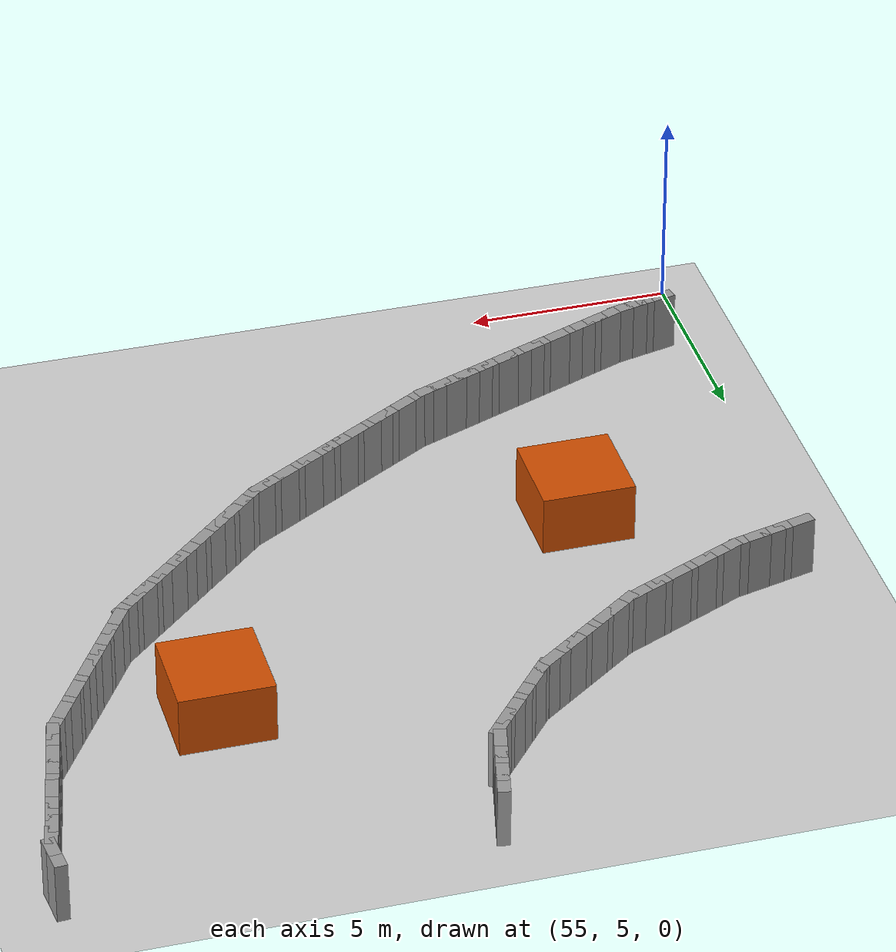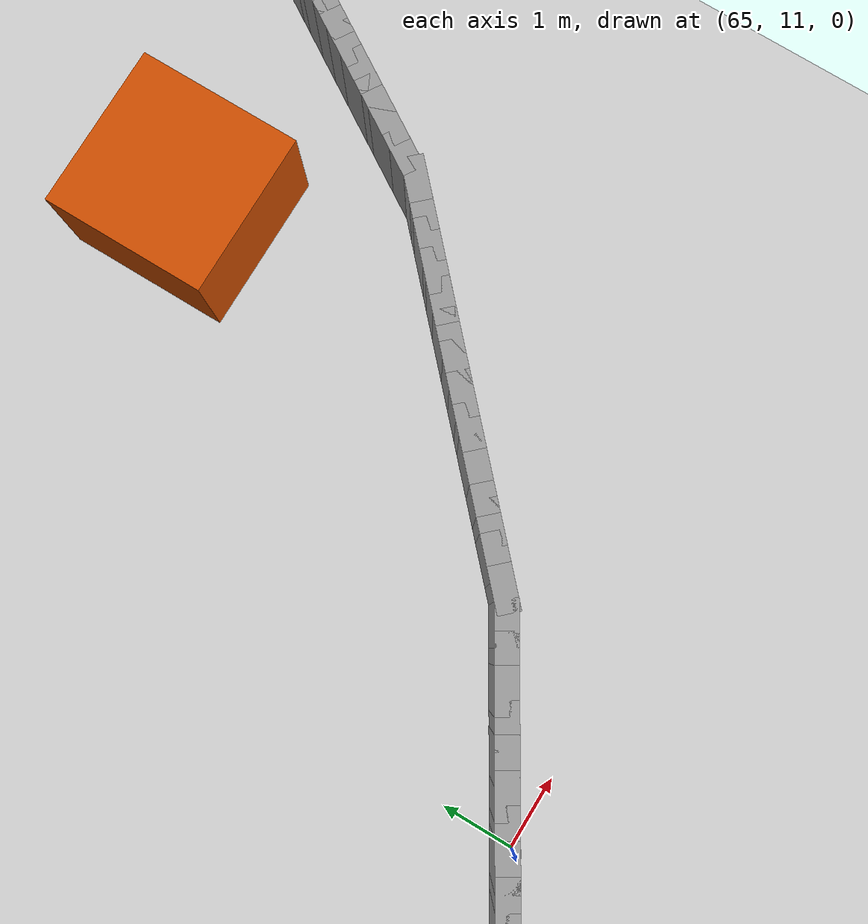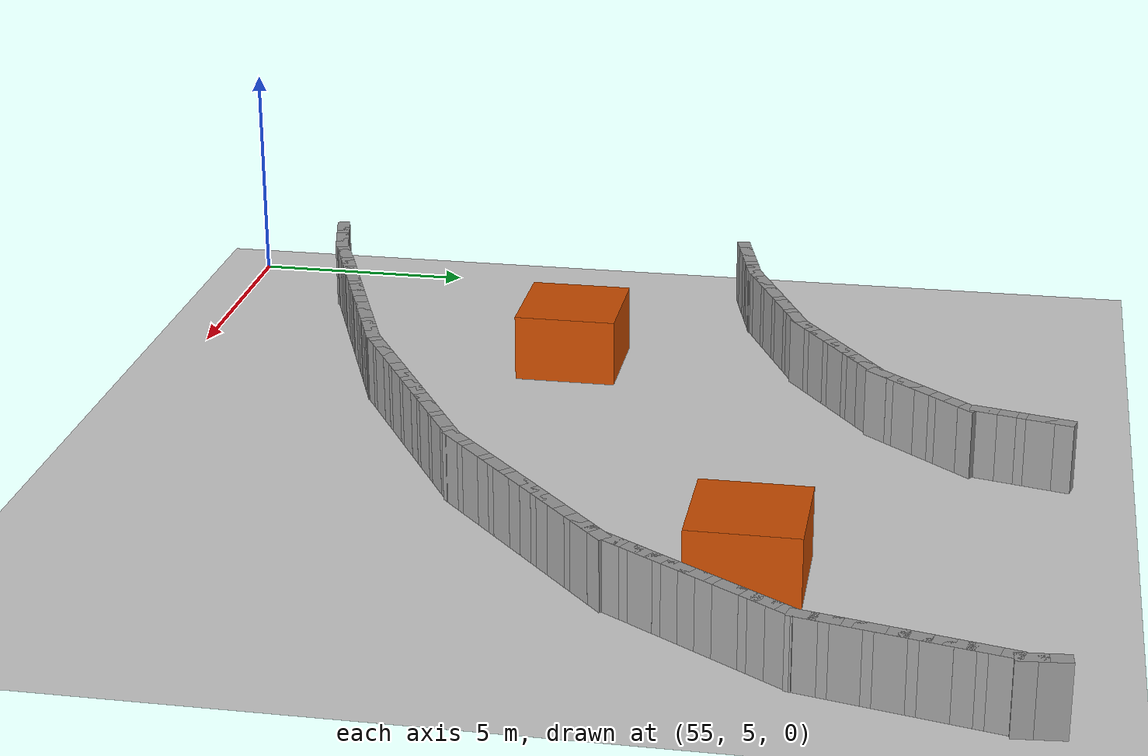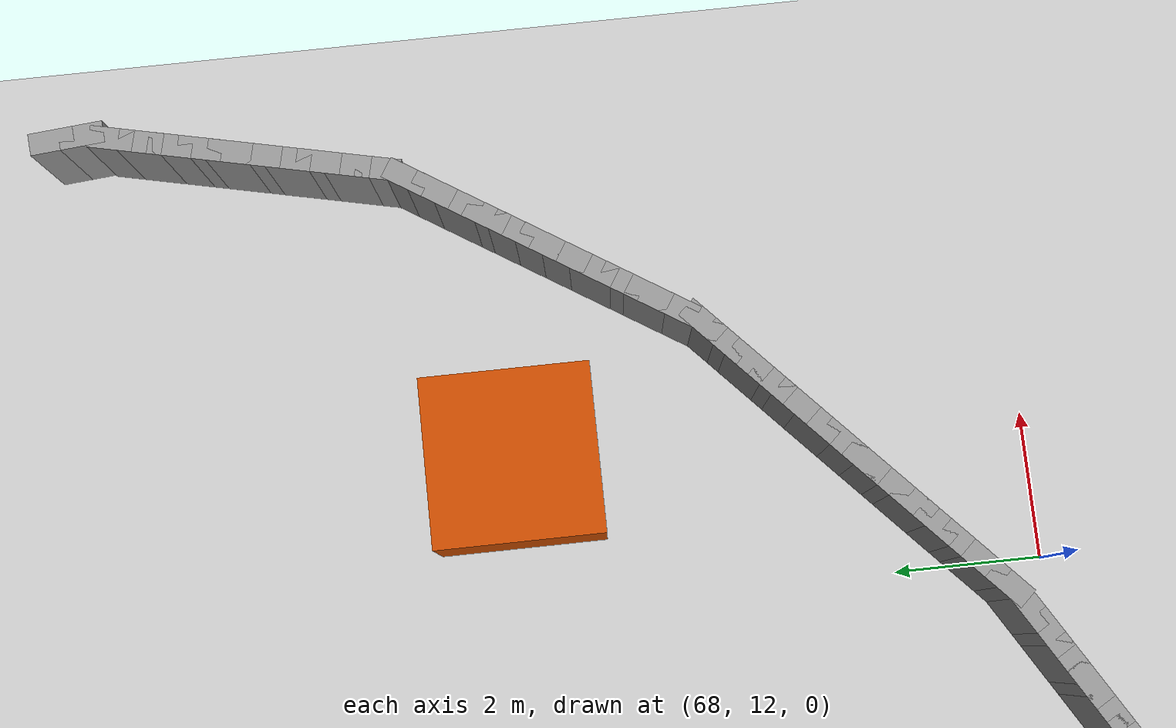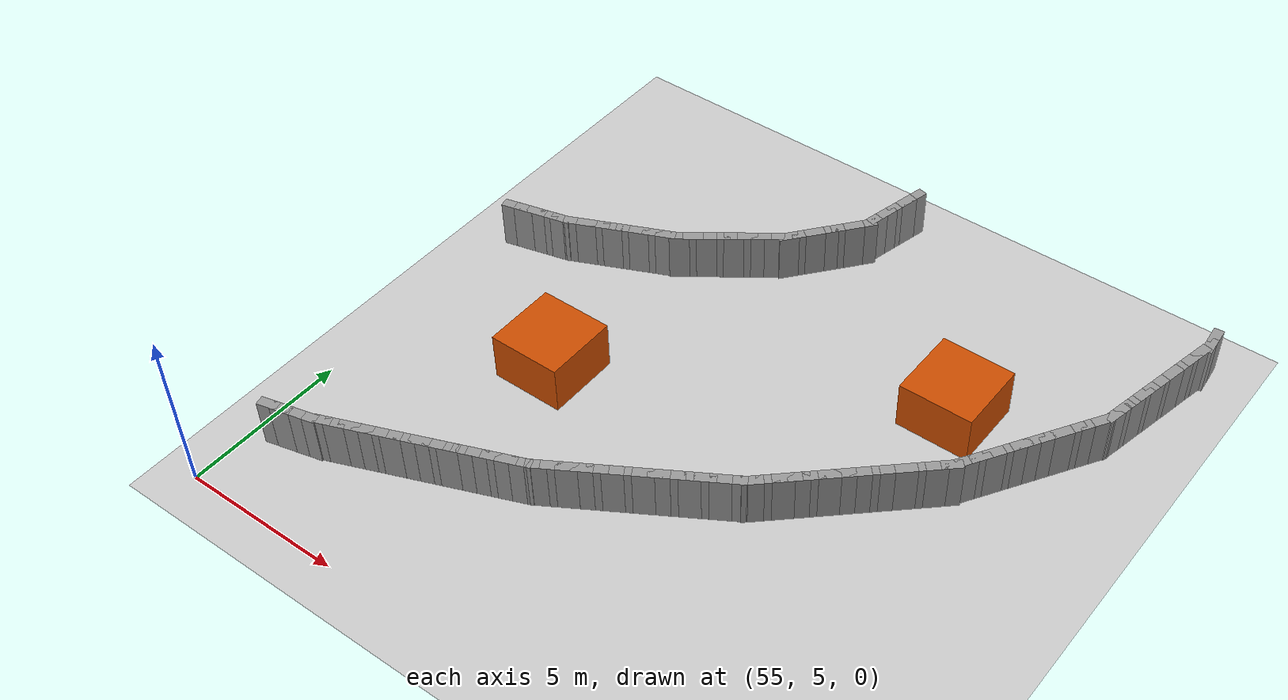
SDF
<sdf version="1.5">
 <world name="img_ellipse_obs">
  <include><uri>model://sun</uri></include>
  <include><uri>model://ground_plane</uri></include>
  <model name="wallL_156">
   <static>true</static>
   <pose>55.783 7.235 0.750 0 0 0.237</pose>
   <link name="link">
    <collision name="col"><geometry><box><size>0.600 0.300 1.500</size></box></geometry></collision>
    <visual name="vis">
     <geometry><box><size>0.600 0.300 1.500</size></box></geometry>
     <material><ambient>0.6 0.6 0.6 1</ambient><diffuse>0.6 0.6 0.6 1</diffuse></material>
    </visual>
   </link>
  </model>
  <model name="wallL_157">
   <static>true</static>
   <pose>56.172 7.328 0.750 0 0 0.237</pose>
   <link name="link">
    <collision name="col"><geometry><box><size>0.600 0.300 1.500</size></box></geometry></collision>
    <visual name="vis">
     <geometry><box><size>0.600 0.300 1.500</size></box></geometry>
     <material><ambient>0.6 0.6 0.6 1</ambient><diffuse>0.6 0.6 0.6 1</diffuse></material>
    </visual>
   </link>
  </model>
  <model name="wallL_158">
   <static>true</static>
   <pose>56.560 7.422 0.750 0 0 0.237</pose>
   <link name="link">
    <collision name="col"><geometry><box><size>0.600 0.300 1.500</size></box></geometry></collision>
    <visual name="vis">
     <geometry><box><size>0.600 0.300 1.500</size></box></geometry>
     <material><ambient>0.6 0.6 0.6 1</ambient><diffuse>0.6 0.6 0.6 1</diffuse></material>
    </visual>
   </link>
  </model>
  <model name="wallL_159">
   <static>true</static>
   <pose>56.949 7.516 0.750 0 0 0.237</pose>
   <link name="link">
    <collision name="col"><geometry><box><size>0.600 0.300 1.500</size></box></geometry></collision>
    <visual name="vis">
     <geometry><box><size>0.600 0.300 1.500</size></box></geometry>
     <material><ambient>0.6 0.6 0.6 1</ambient><diffuse>0.6 0.6 0.6 1</diffuse></material>
    </visual>
   </link>
  </model>
  <model name="wallL_160">
   <static>true</static>
   <pose>57.323 7.658 0.750 0 0 0.376</pose>
   <link name="link">
    <collision name="col"><geometry><box><size>0.600 0.300 1.500</size></box></geometry></collision>
    <visual name="vis">
     <geometry><box><size>0.600 0.300 1.500</size></box></geometry>
     <material><ambient>0.6 0.6 0.6 1</ambient><diffuse>0.6 0.6 0.6 1</diffuse></material>
    </visual>
   </link>
  </model>
  <model name="wallL_161">
   <static>true</static>
   <pose>57.695 7.804 0.750 0 0 0.376</pose>
   <link name="link">
    <collision name="col"><geometry><box><size>0.600 0.300 1.500</size></box></geometry></collision>
    <visual name="vis">
     <geometry><box><size>0.600 0.300 1.500</size></box></geometry>
     <material><ambient>0.6 0.6 0.6 1</ambient><diffuse>0.6 0.6 0.6 1</diffuse></material>
    </visual>
   </link>
  </model>
  <model name="wallL_162">
   <static>true</static>
   <pose>58.067 7.951 0.750 0 0 0.376</pose>
   <link name="link">
    <collision name="col"><geometry><box><size>0.600 0.300 1.500</size></box></geometry></collision>
    <visual name="vis">
     <geometry><box><size>0.600 0.300 1.500</size></box></geometry>
     <material><ambient>0.6 0.6 0.6 1</ambient><diffuse>0.6 0.6 0.6 1</diffuse></material>
    </visual>
   </link>
  </model>
  <model name="wallL_163">
   <static>true</static>
   <pose>58.439 8.098 0.750 0 0 0.376</pose>
   <link name="link">
    <collision name="col"><geometry><box><size>0.600 0.300 1.500</size></box></geometry></collision>
    <visual name="vis">
     <geometry><box><size>0.600 0.300 1.500</size></box></geometry>
     <material><ambient>0.6 0.6 0.6 1</ambient><diffuse>0.6 0.6 0.6 1</diffuse></material>
    </visual>
   </link>
  </model>
  <model name="wallL_164">
   <static>true</static>
   <pose>58.811 8.245 0.750 0 0 0.376</pose>
   <link name="link">
    <collision name="col"><geometry><box><size>0.600 0.300 1.500</size></box></geometry></collision>
    <visual name="vis">
     <geometry><box><size>0.600 0.300 1.500</size></box></geometry>
     <material><ambient>0.6 0.6 0.6 1</ambient><diffuse>0.6 0.6 0.6 1</diffuse></material>
    </visual>
   </link>
  </model>
  <model name="wallL_165">
   <static>true</static>
   <pose>59.184 8.391 0.750 0 0 0.376</pose>
   <link name="link">
    <collision name="col"><geometry><box><size>0.600 0.300 1.500</size></box></geometry></collision>
    <visual name="vis">
     <geometry><box><size>0.600 0.300 1.500</size></box></geometry>
     <material><ambient>0.6 0.6 0.6 1</ambient><diffuse>0.6 0.6 0.6 1</diffuse></material>
    </visual>
   </link>
  </model>
  <model name="wallL_166">
   <static>true</static>
   <pose>59.556 8.538 0.750 0 0 0.376</pose>
   <link name="link">
    <collision name="col"><geometry><box><size>0.600 0.300 1.500</size></box></geometry></collision>
    <visual name="vis">
     <geometry><box><size>0.600 0.300 1.500</size></box></geometry>
     <material><ambient>0.6 0.6 0.6 1</ambient><diffuse>0.6 0.6 0.6 1</diffuse></material>
    </visual>
   </link>
  </model>
  <model name="wallL_167">
   <static>true</static>
   <pose>59.928 8.685 0.750 0 0 0.376</pose>
   <link name="link">
    <collision name="col"><geometry><box><size>0.600 0.300 1.500</size></box></geometry></collision>
    <visual name="vis">
     <geometry><box><size>0.600 0.300 1.500</size></box></geometry>
     <material><ambient>0.6 0.6 0.6 1</ambient><diffuse>0.6 0.6 0.6 1</diffuse></material>
    </visual>
   </link>
  </model>
  <model name="wallL_168">
   <static>true</static>
   <pose>60.300 8.832 0.750 0 0 0.376</pose>
   <link name="link">
    <collision name="col"><geometry><box><size>0.600 0.300 1.500</size></box></geometry></collision>
    <visual name="vis">
     <geometry><box><size>0.600 0.300 1.500</size></box></geometry>
     <material><ambient>0.6 0.6 0.6 1</ambient><diffuse>0.6 0.6 0.6 1</diffuse></material>
    </visual>
   </link>
  </model>
  <model name="wallL_169">
   <static>true</static>
   <pose>60.672 8.978 0.750 0 0 0.376</pose>
   <link name="link">
    <collision name="col"><geometry><box><size>0.600 0.300 1.500</size></box></geometry></collision>
    <visual name="vis">
     <geometry><box><size>0.600 0.300 1.500</size></box></geometry>
     <material><ambient>0.6 0.6 0.6 1</ambient><diffuse>0.6 0.6 0.6 1</diffuse></material>
    </visual>
   </link>
  </model>
  <model name="wallL_170">
   <static>true</static>
   <pose>61.044 9.125 0.750 0 0 0.376</pose>
   <link name="link">
    <collision name="col"><geometry><box><size>0.600 0.300 1.500</size></box></geometry></collision>
    <visual name="vis">
     <geometry><box><size>0.600 0.300 1.500</size></box></geometry>
     <material><ambient>0.6 0.6 0.6 1</ambient><diffuse>0.6 0.6 0.6 1</diffuse></material>
    </visual>
   </link>
  </model>
  <model name="wallL_171">
   <static>true</static>
   <pose>61.416 9.272 0.750 0 0 0.376</pose>
   <link name="link">
    <collision name="col"><geometry><box><size>0.600 0.300 1.500</size></box></geometry></collision>
    <visual name="vis">
     <geometry><box><size>0.600 0.300 1.500</size></box></geometry>
     <material><ambient>0.6 0.6 0.6 1</ambient><diffuse>0.6 0.6 0.6 1</diffuse></material>
    </visual>
   </link>
  </model>
  <model name="wallL_172">
   <static>true</static>
   <pose>61.788 9.419 0.750 0 0 0.376</pose>
   <link name="link">
    <collision name="col"><geometry><box><size>0.600 0.300 1.500</size></box></geometry></collision>
    <visual name="vis">
     <geometry><box><size>0.600 0.300 1.500</size></box></geometry>
     <material><ambient>0.6 0.6 0.6 1</ambient><diffuse>0.6 0.6 0.6 1</diffuse></material>
    </visual>
   </link>
  </model>
  <model name="wallL_173">
   <static>true</static>
   <pose>62.160 9.565 0.750 0 0 0.376</pose>
   <link name="link">
    <collision name="col"><geometry><box><size>0.600 0.300 1.500</size></box></geometry></collision>
    <visual name="vis">
     <geometry><box><size>0.600 0.300 1.500</size></box></geometry>
     <material><ambient>0.6 0.6 0.6 1</ambient><diffuse>0.6 0.6 0.6 1</diffuse></material>
    </visual>
   </link>
  </model>
  <model name="wallL_174">
   <static>true</static>
   <pose>62.533 9.712 0.750 0 0 0.376</pose>
   <link name="link">
    <collision name="col"><geometry><box><size>0.600 0.300 1.500</size></box></geometry></collision>
    <visual name="vis">
     <geometry><box><size>0.600 0.300 1.500</size></box></geometry>
     <material><ambient>0.6 0.6 0.6 1</ambient><diffuse>0.6 0.6 0.6 1</diffuse></material>
    </visual>
   </link>
  </model>
  <model name="wallL_175">
   <static>true</static>
   <pose>62.889 9.891 0.750 0 0 0.540</pose>
   <link name="link">
    <collision name="col"><geometry><box><size>0.600 0.300 1.500</size></box></geometry></collision>
    <visual name="vis">
     <geometry><box><size>0.600 0.300 1.500</size></box></geometry>
     <material><ambient>0.6 0.6 0.6 1</ambient><diffuse>0.6 0.6 0.6 1</diffuse></material>
    </visual>
   </link>
  </model>
  <model name="wallL_176">
   <static>true</static>
   <pose>63.232 10.097 0.750 0 0 0.540</pose>
   <link name="link">
    <collision name="col"><geometry><box><size>0.600 0.300 1.500</size></box></geometry></collision>
    <visual name="vis">
     <geometry><box><size>0.600 0.300 1.500</size></box></geometry>
     <material><ambient>0.6 0.6 0.6 1</ambient><diffuse>0.6 0.6 0.6 1</diffuse></material>
    </visual>
   </link>
  </model>
  <model name="wallL_177">
   <static>true</static>
   <pose>63.575 10.302 0.750 0 0 0.540</pose>
   <link name="link">
    <collision name="col"><geometry><box><size>0.600 0.300 1.500</size></box></geometry></collision>
    <visual name="vis">
     <geometry><box><size>0.600 0.300 1.500</size></box></geometry>
     <material><ambient>0.6 0.6 0.6 1</ambient><diffuse>0.6 0.6 0.6 1</diffuse></material>
    </visual>
   </link>
  </model>
  <model name="wallL_178">
   <static>true</static>
   <pose>63.918 10.508 0.750 0 0 0.540</pose>
   <link name="link">
    <collision name="col"><geometry><box><size>0.600 0.300 1.500</size></box></geometry></collision>
    <visual name="vis">
     <geometry><box><size>0.600 0.300 1.500</size></box></geometry>
     <material><ambient>0.6 0.6 0.6 1</ambient><diffuse>0.6 0.6 0.6 1</diffuse></material>
    </visual>
   </link>
  </model>
  <model name="wallL_179">
   <static>true</static>
   <pose>64.261 10.714 0.750 0 0 0.540</pose>
   <link name="link">
    <collision name="col"><geometry><box><size>0.600 0.300 1.500</size></box></geometry></collision>
    <visual name="vis">
     <geometry><box><size>0.600 0.300 1.500</size></box></geometry>
     <material><ambient>0.6 0.6 0.6 1</ambient><diffuse>0.6 0.6 0.6 1</diffuse></material>
    </visual>
   </link>
  </model>
  <model name="wallL_180">
   <static>true</static>
   <pose>64.604 10.919 0.750 0 0 0.540</pose>
   <link name="link">
    <collision name="col"><geometry><box><size>0.600 0.300 1.500</size></box></geometry></collision>
    <visual name="vis">
     <geometry><box><size>0.600 0.300 1.500</size></box></geometry>
     <material><ambient>0.6 0.6 0.6 1</ambient><diffuse>0.6 0.6 0.6 1</diffuse></material>
    </visual>
   </link>
  </model>
  <model name="wallL_181">
   <static>true</static>
   <pose>64.947 11.125 0.750 0 0 0.540</pose>
   <link name="link">
    <collision name="col"><geometry><box><size>0.600 0.300 1.500</size></box></geometry></collision>
    <visual name="vis">
     <geometry><box><size>0.600 0.300 1.500</size></box></geometry>
     <material><ambient>0.6 0.6 0.6 1</ambient><diffuse>0.6 0.6 0.6 1</diffuse></material>
    </visual>
   </link>
  </model>
  <model name="wallL_182">
   <static>true</static>
   <pose>65.291 11.330 0.750 0 0 0.540</pose>
   <link name="link">
    <collision name="col"><geometry><box><size>0.600 0.300 1.500</size></box></geometry></collision>
    <visual name="vis">
     <geometry><box><size>0.600 0.300 1.500</size></box></geometry>
     <material><ambient>0.6 0.6 0.6 1</ambient><diffuse>0.6 0.6 0.6 1</diffuse></material>
    </visual>
   </link>
  </model>
  <model name="wallL_183">
   <static>true</static>
   <pose>65.634 11.536 0.750 0 0 0.540</pose>
   <link name="link">
    <collision name="col"><geometry><box><size>0.600 0.300 1.500</size></box></geometry></collision>
    <visual name="vis">
     <geometry><box><size>0.600 0.300 1.500</size></box></geometry>
     <material><ambient>0.6 0.6 0.6 1</ambient><diffuse>0.6 0.6 0.6 1</diffuse></material>
    </visual>
   </link>
  </model>
  <model name="wallL_184">
   <static>true</static>
   <pose>65.977 11.742 0.750 0 0 0.540</pose>
   <link name="link">
    <collision name="col"><geometry><box><size>0.600 0.300 1.500</size></box></geometry></collision>
    <visual name="vis">
     <geometry><box><size>0.600 0.300 1.500</size></box></geometry>
     <material><ambient>0.6 0.6 0.6 1</ambient><diffuse>0.6 0.6 0.6 1</diffuse></material>
    </visual>
   </link>
  </model>
  <model name="wallL_185">
   <static>true</static>
   <pose>66.320 11.947 0.750 0 0 0.540</pose>
   <link name="link">
    <collision name="col"><geometry><box><size>0.600 0.300 1.500</size></box></geometry></collision>
    <visual name="vis">
     <geometry><box><size>0.600 0.300 1.500</size></box></geometry>
     <material><ambient>0.6 0.6 0.6 1</ambient><diffuse>0.6 0.6 0.6 1</diffuse></material>
    </visual>
   </link>
  </model>
  <model name="wallL_186">
   <static>true</static>
   <pose>66.663 12.153 0.750 0 0 0.540</pose>
   <link name="link">
    <collision name="col"><geometry><box><size>0.600 0.300 1.500</size></box></geometry></collision>
    <visual name="vis">
     <geometry><box><size>0.600 0.300 1.500</size></box></geometry>
     <material><ambient>0.6 0.6 0.6 1</ambient><diffuse>0.6 0.6 0.6 1</diffuse></material>
    </visual>
   </link>
  </model>
  <model name="wallL_187">
   <static>true</static>
   <pose>67.006 12.358 0.750 0 0 0.540</pose>
   <link name="link">
    <collision name="col"><geometry><box><size>0.600 0.300 1.500</size></box></geometry></collision>
    <visual name="vis">
     <geometry><box><size>0.600 0.300 1.500</size></box></geometry>
     <material><ambient>0.6 0.6 0.6 1</ambient><diffuse>0.6 0.6 0.6 1</diffuse></material>
    </visual>
   </link>
  </model>
  <model name="wallL_188">
   <static>true</static>
   <pose>67.349 12.564 0.750 0 0 0.540</pose>
   <link name="link">
    <collision name="col"><geometry><box><size>0.600 0.300 1.500</size></box></geometry></collision>
    <visual name="vis">
     <geometry><box><size>0.600 0.300 1.500</size></box></geometry>
     <material><ambient>0.6 0.6 0.6 1</ambient><diffuse>0.6 0.6 0.6 1</diffuse></material>
    </visual>
   </link>
  </model>
  <model name="wallL_189">
   <static>true</static>
   <pose>67.675 12.793 0.750 0 0 0.748</pose>
   <link name="link">
    <collision name="col"><geometry><box><size>0.600 0.300 1.500</size></box></geometry></collision>
    <visual name="vis">
     <geometry><box><size>0.600 0.300 1.500</size></box></geometry>
     <material><ambient>0.6 0.6 0.6 1</ambient><diffuse>0.6 0.6 0.6 1</diffuse></material>
    </visual>
   </link>
  </model>
  <model name="wallL_190">
   <static>true</static>
   <pose>67.968 13.065 0.750 0 0 0.748</pose>
   <link name="link">
    <collision name="col"><geometry><box><size>0.600 0.300 1.500</size></box></geometry></collision>
    <visual name="vis">
     <geometry><box><size>0.600 0.300 1.500</size></box></geometry>
     <material><ambient>0.6 0.6 0.6 1</ambient><diffuse>0.6 0.6 0.6 1</diffuse></material>
    </visual>
   </link>
  </model>
  <model name="wallL_191">
   <static>true</static>
   <pose>68.262 13.337 0.750 0 0 0.748</pose>
   <link name="link">
    <collision name="col"><geometry><box><size>0.600 0.300 1.500</size></box></geometry></collision>
    <visual name="vis">
     <geometry><box><size>0.600 0.300 1.500</size></box></geometry>
     <material><ambient>0.6 0.6 0.6 1</ambient><diffuse>0.6 0.6 0.6 1</diffuse></material>
    </visual>
   </link>
  </model>
  <model name="wallL_192">
   <static>true</static>
   <pose>68.555 13.609 0.750 0 0 0.748</pose>
   <link name="link">
    <collision name="col"><geometry><box><size>0.600 0.300 1.500</size></box></geometry></collision>
    <visual name="vis">
     <geometry><box><size>0.600 0.300 1.500</size></box></geometry>
     <material><ambient>0.6 0.6 0.6 1</ambient><diffuse>0.6 0.6 0.6 1</diffuse></material>
    </visual>
   </link>
  </model>
  <model name="wallL_193">
   <static>true</static>
   <pose>68.848 13.881 0.750 0 0 0.748</pose>
   <link name="link">
    <collision name="col"><geometry><box><size>0.600 0.300 1.500</size></box></geometry></collision>
    <visual name="vis">
     <geometry><box><size>0.600 0.300 1.500</size></box></geometry>
     <material><ambient>0.6 0.6 0.6 1</ambient><diffuse>0.6 0.6 0.6 1</diffuse></material>
    </visual>
   </link>
  </model>
  <model name="wallL_194">
   <static>true</static>
   <pose>69.142 14.153 0.750 0 0 0.748</pose>
   <link name="link">
    <collision name="col"><geometry><box><size>0.600 0.300 1.500</size></box></geometry></collision>
    <visual name="vis">
     <geometry><box><size>0.600 0.300 1.500</size></box></geometry>
     <material><ambient>0.6 0.6 0.6 1</ambient><diffuse>0.6 0.6 0.6 1</diffuse></material>
    </visual>
   </link>
  </model>
  <model name="wallL_195">
   <static>true</static>
   <pose>69.435 14.425 0.750 0 0 0.748</pose>
   <link name="link">
    <collision name="col"><geometry><box><size>0.600 0.300 1.500</size></box></geometry></collision>
    <visual name="vis">
     <geometry><box><size>0.600 0.300 1.500</size></box></geometry>
     <material><ambient>0.6 0.6 0.6 1</ambient><diffuse>0.6 0.6 0.6 1</diffuse></material>
    </visual>
   </link>
  </model>
  <model name="wallL_196">
   <static>true</static>
   <pose>69.728 14.697 0.750 0 0 0.748</pose>
   <link name="link">
    <collision name="col"><geometry><box><size>0.600 0.300 1.500</size></box></geometry></collision>
    <visual name="vis">
     <geometry><box><size>0.600 0.300 1.500</size></box></geometry>
     <material><ambient>0.6 0.6 0.6 1</ambient><diffuse>0.6 0.6 0.6 1</diffuse></material>
    </visual>
   </link>
  </model>
  <model name="wallL_197">
   <static>true</static>
   <pose>70.021 14.969 0.750 0 0 0.748</pose>
   <link name="link">
    <collision name="col"><geometry><box><size>0.600 0.300 1.500</size></box></geometry></collision>
    <visual name="vis">
     <geometry><box><size>0.600 0.300 1.500</size></box></geometry>
     <material><ambient>0.6 0.6 0.6 1</ambient><diffuse>0.6 0.6 0.6 1</diffuse></material>
    </visual>
   </link>
  </model>
  <model name="wallL_198">
   <static>true</static>
   <pose>70.315 15.241 0.750 0 0 0.748</pose>
   <link name="link">
    <collision name="col"><geometry><box><size>0.600 0.300 1.500</size></box></geometry></collision>
    <visual name="vis">
     <geometry><box><size>0.600 0.300 1.500</size></box></geometry>
     <material><ambient>0.6 0.6 0.6 1</ambient><diffuse>0.6 0.6 0.6 1</diffuse></material>
    </visual>
   </link>
  </model>
  <model name="wallL_199">
   <static>true</static>
   <pose>70.608 15.512 0.750 0 0 0.748</pose>
   <link name="link">
    <collision name="col"><geometry><box><size>0.600 0.300 1.500</size></box></geometry></collision>
    <visual name="vis">
     <geometry><box><size>0.600 0.300 1.500</size></box></geometry>
     <material><ambient>0.6 0.6 0.6 1</ambient><diffuse>0.6 0.6 0.6 1</diffuse></material>
    </visual>
   </link>
  </model>
  <model name="wallL_200">
   <static>true</static>
   <pose>70.901 15.784 0.750 0 0 0.748</pose>
   <link name="link">
    <collision name="col"><geometry><box><size>0.600 0.300 1.500</size></box></geometry></collision>
    <visual name="vis">
     <geometry><box><size>0.600 0.300 1.500</size></box></geometry>
     <material><ambient>0.6 0.6 0.6 1</ambient><diffuse>0.6 0.6 0.6 1</diffuse></material>
    </visual>
   </link>
  </model>
  <model name="wallL_201">
   <static>true</static>
   <pose>71.195 16.056 0.750 0 0 0.748</pose>
   <link name="link">
    <collision name="col"><geometry><box><size>0.600 0.300 1.500</size></box></geometry></collision>
    <visual name="vis">
     <geometry><box><size>0.600 0.300 1.500</size></box></geometry>
     <material><ambient>0.6 0.6 0.6 1</ambient><diffuse>0.6 0.6 0.6 1</diffuse></material>
    </visual>
   </link>
  </model>
  <model name="wallL_202">
   <static>true</static>
   <pose>71.488 16.328 0.750 0 0 0.748</pose>
   <link name="link">
    <collision name="col"><geometry><box><size>0.600 0.300 1.500</size></box></geometry></collision>
    <visual name="vis">
     <geometry><box><size>0.600 0.300 1.500</size></box></geometry>
     <material><ambient>0.6 0.6 0.6 1</ambient><diffuse>0.6 0.6 0.6 1</diffuse></material>
    </visual>
   </link>
  </model>
  <model name="wallL_203">
   <static>true</static>
   <pose>71.715 16.655 0.750 0 0 1.009</pose>
   <link name="link">
    <collision name="col"><geometry><box><size>0.600 0.300 1.500</size></box></geometry></collision>
    <visual name="vis">
     <geometry><box><size>0.600 0.300 1.500</size></box></geometry>
     <material><ambient>0.6 0.6 0.6 1</ambient><diffuse>0.6 0.6 0.6 1</diffuse></material>
    </visual>
   </link>
  </model>
  <model name="wallL_204">
   <static>true</static>
   <pose>71.928 16.994 0.750 0 0 1.009</pose>
   <link name="link">
    <collision name="col"><geometry><box><size>0.600 0.300 1.500</size></box></geometry></collision>
    <visual name="vis">
     <geometry><box><size>0.600 0.300 1.500</size></box></geometry>
     <material><ambient>0.6 0.6 0.6 1</ambient><diffuse>0.6 0.6 0.6 1</diffuse></material>
    </visual>
   </link>
  </model>
  <model name="wallL_205">
   <static>true</static>
   <pose>72.142 17.332 0.750 0 0 1.009</pose>
   <link name="link">
    <collision name="col"><geometry><box><size>0.600 0.300 1.500</size></box></geometry></collision>
    <visual name="vis">
     <geometry><box><size>0.600 0.300 1.500</size></box></geometry>
     <material><ambient>0.6 0.6 0.6 1</ambient><diffuse>0.6 0.6 0.6 1</diffuse></material>
    </visual>
   </link>
  </model>
  <model name="wallL_206">
   <static>true</static>
   <pose>72.355 17.671 0.750 0 0 1.009</pose>
   <link name="link">
    <collision name="col"><geometry><box><size>0.600 0.300 1.500</size></box></geometry></collision>
    <visual name="vis">
     <geometry><box><size>0.600 0.300 1.500</size></box></geometry>
     <material><ambient>0.6 0.6 0.6 1</ambient><diffuse>0.6 0.6 0.6 1</diffuse></material>
    </visual>
   </link>
  </model>
  <model name="wallL_207">
   <static>true</static>
   <pose>72.568 18.009 0.750 0 0 1.009</pose>
   <link name="link">
    <collision name="col"><geometry><box><size>0.600 0.300 1.500</size></box></geometry></collision>
    <visual name="vis">
     <geometry><box><size>0.600 0.300 1.500</size></box></geometry>
     <material><ambient>0.6 0.6 0.6 1</ambient><diffuse>0.6 0.6 0.6 1</diffuse></material>
    </visual>
   </link>
  </model>
  <model name="wallL_208">
   <static>true</static>
   <pose>72.781 18.347 0.750 0 0 1.009</pose>
   <link name="link">
    <collision name="col"><geometry><box><size>0.600 0.300 1.500</size></box></geometry></collision>
    <visual name="vis">
     <geometry><box><size>0.600 0.300 1.500</size></box></geometry>
     <material><ambient>0.6 0.6 0.6 1</ambient><diffuse>0.6 0.6 0.6 1</diffuse></material>
    </visual>
   </link>
  </model>
  <model name="wallL_209">
   <static>true</static>
   <pose>72.995 18.686 0.750 0 0 1.009</pose>
   <link name="link">
    <collision name="col"><geometry><box><size>0.600 0.300 1.500</size></box></geometry></collision>
    <visual name="vis">
     <geometry><box><size>0.600 0.300 1.500</size></box></geometry>
     <material><ambient>0.6 0.6 0.6 1</ambient><diffuse>0.6 0.6 0.6 1</diffuse></material>
    </visual>
   </link>
  </model>
  <model name="wallL_210">
   <static>true</static>
   <pose>73.208 19.024 0.750 0 0 1.009</pose>
   <link name="link">
    <collision name="col"><geometry><box><size>0.600 0.300 1.500</size></box></geometry></collision>
    <visual name="vis">
     <geometry><box><size>0.600 0.300 1.500</size></box></geometry>
     <material><ambient>0.6 0.6 0.6 1</ambient><diffuse>0.6 0.6 0.6 1</diffuse></material>
    </visual>
   </link>
  </model>
  <model name="wallL_211">
   <static>true</static>
   <pose>73.421 19.363 0.750 0 0 1.009</pose>
   <link name="link">
    <collision name="col"><geometry><box><size>0.600 0.300 1.500</size></box></geometry></collision>
    <visual name="vis">
     <geometry><box><size>0.600 0.300 1.500</size></box></geometry>
     <material><ambient>0.6 0.6 0.6 1</ambient><diffuse>0.6 0.6 0.6 1</diffuse></material>
    </visual>
   </link>
  </model>
  <model name="wallL_212">
   <static>true</static>
   <pose>73.634 19.701 0.750 0 0 1.009</pose>
   <link name="link">
    <collision name="col"><geometry><box><size>0.600 0.300 1.500</size></box></geometry></collision>
    <visual name="vis">
     <geometry><box><size>0.600 0.300 1.500</size></box></geometry>
     <material><ambient>0.6 0.6 0.6 1</ambient><diffuse>0.6 0.6 0.6 1</diffuse></material>
    </visual>
   </link>
  </model>
  <model name="wallL_213">
   <static>true</static>
   <pose>73.848 20.040 0.750 0 0 1.009</pose>
   <link name="link">
    <collision name="col"><geometry><box><size>0.600 0.300 1.500</size></box></geometry></collision>
    <visual name="vis">
     <geometry><box><size>0.600 0.300 1.500</size></box></geometry>
     <material><ambient>0.6 0.6 0.6 1</ambient><diffuse>0.6 0.6 0.6 1</diffuse></material>
    </visual>
   </link>
  </model>
  <model name="wallL_214">
   <static>true</static>
   <pose>74.006 20.401 0.750 0 0 1.353</pose>
   <link name="link">
    <collision name="col"><geometry><box><size>0.600 0.300 1.500</size></box></geometry></collision>
    <visual name="vis">
     <geometry><box><size>0.600 0.300 1.500</size></box></geometry>
     <material><ambient>0.6 0.6 0.6 1</ambient><diffuse>0.6 0.6 0.6 1</diffuse></material>
    </visual>
   </link>
  </model>
  <model name="wallL_215">
   <static>true</static>
   <pose>74.092 20.791 0.750 0 0 1.353</pose>
   <link name="link">
    <collision name="col"><geometry><box><size>0.600 0.300 1.500</size></box></geometry></collision>
    <visual name="vis">
     <geometry><box><size>0.600 0.300 1.500</size></box></geometry>
     <material><ambient>0.6 0.6 0.6 1</ambient><diffuse>0.6 0.6 0.6 1</diffuse></material>
    </visual>
   </link>
  </model>
  <model name="wallL_216">
   <static>true</static>
   <pose>74.179 21.182 0.750 0 0 1.353</pose>
   <link name="link">
    <collision name="col"><geometry><box><size>0.600 0.300 1.500</size></box></geometry></collision>
    <visual name="vis">
     <geometry><box><size>0.600 0.300 1.500</size></box></geometry>
     <material><ambient>0.6 0.6 0.6 1</ambient><diffuse>0.6 0.6 0.6 1</diffuse></material>
    </visual>
   </link>
  </model>
  <model name="wallL_217">
   <static>true</static>
   <pose>74.265 21.572 0.750 0 0 1.353</pose>
   <link name="link">
    <collision name="col"><geometry><box><size>0.600 0.300 1.500</size></box></geometry></collision>
    <visual name="vis">
     <geometry><box><size>0.600 0.300 1.500</size></box></geometry>
     <material><ambient>0.6 0.6 0.6 1</ambient><diffuse>0.6 0.6 0.6 1</diffuse></material>
    </visual>
   </link>
  </model>
  <model name="wallL_218">
   <static>true</static>
   <pose>74.352 21.963 0.750 0 0 1.353</pose>
   <link name="link">
    <collision name="col"><geometry><box><size>0.600 0.300 1.500</size></box></geometry></collision>
    <visual name="vis">
     <geometry><box><size>0.600 0.300 1.500</size></box></geometry>
     <material><ambient>0.6 0.6 0.6 1</ambient><diffuse>0.6 0.6 0.6 1</diffuse></material>
    </visual>
   </link>
  </model>
  <model name="wallL_219">
   <static>true</static>
   <pose>74.438 22.353 0.750 0 0 1.353</pose>
   <link name="link">
    <collision name="col"><geometry><box><size>0.600 0.300 1.500</size></box></geometry></collision>
    <visual name="vis">
     <geometry><box><size>0.600 0.300 1.500</size></box></geometry>
     <material><ambient>0.6 0.6 0.6 1</ambient><diffuse>0.6 0.6 0.6 1</diffuse></material>
    </visual>
   </link>
  </model>
  <model name="wallL_220">
   <static>true</static>
   <pose>74.525 22.744 0.750 0 0 1.353</pose>
   <link name="link">
    <collision name="col"><geometry><box><size>0.600 0.300 1.500</size></box></geometry></collision>
    <visual name="vis">
     <geometry><box><size>0.600 0.300 1.500</size></box></geometry>
     <material><ambient>0.6 0.6 0.6 1</ambient><diffuse>0.6 0.6 0.6 1</diffuse></material>
    </visual>
   </link>
  </model>
  <model name="wallL_221">
   <static>true</static>
   <pose>74.611 23.134 0.750 0 0 1.353</pose>
   <link name="link">
    <collision name="col"><geometry><box><size>0.600 0.300 1.500</size></box></geometry></collision>
    <visual name="vis">
     <geometry><box><size>0.600 0.300 1.500</size></box></geometry>
     <material><ambient>0.6 0.6 0.6 1</ambient><diffuse>0.6 0.6 0.6 1</diffuse></material>
    </visual>
   </link>
  </model>
  <model name="wallL_222">
   <static>true</static>
   <pose>74.697 23.525 0.750 0 0 1.353</pose>
   <link name="link">
    <collision name="col"><geometry><box><size>0.600 0.300 1.500</size></box></geometry></collision>
    <visual name="vis">
     <geometry><box><size>0.600 0.300 1.500</size></box></geometry>
     <material><ambient>0.6 0.6 0.6 1</ambient><diffuse>0.6 0.6 0.6 1</diffuse></material>
    </visual>
   </link>
  </model>
  <model name="wallL_223">
   <static>true</static>
   <pose>74.784 23.915 0.750 0 0 1.353</pose>
   <link name="link">
    <collision name="col"><geometry><box><size>0.600 0.300 1.500</size></box></geometry></collision>
    <visual name="vis">
     <geometry><box><size>0.600 0.300 1.500</size></box></geometry>
     <material><ambient>0.6 0.6 0.6 1</ambient><diffuse>0.6 0.6 0.6 1</diffuse></material>
    </visual>
   </link>
  </model>
  <model name="wallL_224">
   <static>true</static>
   <pose>74.868 24.306 0.750 0 0 1.659</pose>
   <link name="link">
    <collision name="col"><geometry><box><size>0.600 0.300 1.500</size></box></geometry></collision>
    <visual name="vis">
     <geometry><box><size>0.600 0.300 1.500</size></box></geometry>
     <material><ambient>0.6 0.6 0.6 1</ambient><diffuse>0.6 0.6 0.6 1</diffuse></material>
    </visual>
   </link>
  </model>
  <model name="wallL_225">
   <static>true</static>
   <pose>74.833 24.705 0.750 0 0 1.659</pose>
   <link name="link">
    <collision name="col"><geometry><box><size>0.600 0.300 1.500</size></box></geometry></collision>
    <visual name="vis">
     <geometry><box><size>0.600 0.300 1.500</size></box></geometry>
     <material><ambient>0.6 0.6 0.6 1</ambient><diffuse>0.6 0.6 0.6 1</diffuse></material>
    </visual>
   </link>
  </model>
  <model name="wallR_144">
   <static>true</static>
   <pose>64.972 24.812 0.750 0 0 -1.808</pose>
   <link name="link">
    <collision name="col"><geometry><box><size>0.600 0.300 1.500</size></box></geometry></collision>
    <visual name="vis">
     <geometry><box><size>0.600 0.300 1.500</size></box></geometry>
     <material><ambient>0.6 0.6 0.6 1</ambient><diffuse>0.6 0.6 0.6 1</diffuse></material>
    </visual>
   </link>
  </model>
  <model name="wallR_145">
   <static>true</static>
   <pose>64.878 24.423 0.750 0 0 -1.808</pose>
   <link name="link">
    <collision name="col"><geometry><box><size>0.600 0.300 1.500</size></box></geometry></collision>
    <visual name="vis">
     <geometry><box><size>0.600 0.300 1.500</size></box></geometry>
     <material><ambient>0.6 0.6 0.6 1</ambient><diffuse>0.6 0.6 0.6 1</diffuse></material>
    </visual>
   </link>
  </model>
  <model name="wallR_146">
   <static>true</static>
   <pose>64.784 24.035 0.750 0 0 -1.808</pose>
   <link name="link">
    <collision name="col"><geometry><box><size>0.600 0.300 1.500</size></box></geometry></collision>
    <visual name="vis">
     <geometry><box><size>0.600 0.300 1.500</size></box></geometry>
     <material><ambient>0.6 0.6 0.6 1</ambient><diffuse>0.6 0.6 0.6 1</diffuse></material>
    </visual>
   </link>
  </model>
  <model name="wallR_147">
   <static>true</static>
   <pose>64.690 23.646 0.750 0 0 -1.808</pose>
   <link name="link">
    <collision name="col"><geometry><box><size>0.600 0.300 1.500</size></box></geometry></collision>
    <visual name="vis">
     <geometry><box><size>0.600 0.300 1.500</size></box></geometry>
     <material><ambient>0.6 0.6 0.6 1</ambient><diffuse>0.6 0.6 0.6 1</diffuse></material>
    </visual>
   </link>
  </model>
  <model name="wallR_148">
   <static>true</static>
   <pose>64.596 23.257 0.750 0 0 -1.808</pose>
   <link name="link">
    <collision name="col"><geometry><box><size>0.600 0.300 1.500</size></box></geometry></collision>
    <visual name="vis">
     <geometry><box><size>0.600 0.300 1.500</size></box></geometry>
     <material><ambient>0.6 0.6 0.6 1</ambient><diffuse>0.6 0.6 0.6 1</diffuse></material>
    </visual>
   </link>
  </model>
  <model name="wallR_149">
   <static>true</static>
   <pose>64.495 22.872 0.750 0 0 -2.257</pose>
   <link name="link">
    <collision name="col"><geometry><box><size>0.600 0.300 1.500</size></box></geometry></collision>
    <visual name="vis">
     <geometry><box><size>0.600 0.300 1.500</size></box></geometry>
     <material><ambient>0.6 0.6 0.6 1</ambient><diffuse>0.6 0.6 0.6 1</diffuse></material>
    </visual>
   </link>
  </model>
  <model name="wallR_150">
   <static>true</static>
   <pose>64.242 22.562 0.750 0 0 -2.257</pose>
   <link name="link">
    <collision name="col"><geometry><box><size>0.600 0.300 1.500</size></box></geometry></collision>
    <visual name="vis">
     <geometry><box><size>0.600 0.300 1.500</size></box></geometry>
     <material><ambient>0.6 0.6 0.6 1</ambient><diffuse>0.6 0.6 0.6 1</diffuse></material>
    </visual>
   </link>
  </model>
  <model name="wallR_151">
   <static>true</static>
   <pose>63.988 22.252 0.750 0 0 -2.257</pose>
   <link name="link">
    <collision name="col"><geometry><box><size>0.600 0.300 1.500</size></box></geometry></collision>
    <visual name="vis">
     <geometry><box><size>0.600 0.300 1.500</size></box></geometry>
     <material><ambient>0.6 0.6 0.6 1</ambient><diffuse>0.6 0.6 0.6 1</diffuse></material>
    </visual>
   </link>
  </model>
  <model name="wallR_152">
   <static>true</static>
   <pose>63.735 21.943 0.750 0 0 -2.257</pose>
   <link name="link">
    <collision name="col"><geometry><box><size>0.600 0.300 1.500</size></box></geometry></collision>
    <visual name="vis">
     <geometry><box><size>0.600 0.300 1.500</size></box></geometry>
     <material><ambient>0.6 0.6 0.6 1</ambient><diffuse>0.6 0.6 0.6 1</diffuse></material>
    </visual>
   </link>
  </model>
  <model name="wallR_153">
   <static>true</static>
   <pose>63.482 21.633 0.750 0 0 -2.257</pose>
   <link name="link">
    <collision name="col"><geometry><box><size>0.600 0.300 1.500</size></box></geometry></collision>
    <visual name="vis">
     <geometry><box><size>0.600 0.300 1.500</size></box></geometry>
     <material><ambient>0.6 0.6 0.6 1</ambient><diffuse>0.6 0.6 0.6 1</diffuse></material>
    </visual>
   </link>
  </model>
  <model name="wallR_154">
   <static>true</static>
   <pose>63.228 21.324 0.750 0 0 -2.257</pose>
   <link name="link">
    <collision name="col"><geometry><box><size>0.600 0.300 1.500</size></box></geometry></collision>
    <visual name="vis">
     <geometry><box><size>0.600 0.300 1.500</size></box></geometry>
     <material><ambient>0.6 0.6 0.6 1</ambient><diffuse>0.6 0.6 0.6 1</diffuse></material>
    </visual>
   </link>
  </model>
  <model name="wallR_155">
   <static>true</static>
   <pose>62.975 21.014 0.750 0 0 -2.257</pose>
   <link name="link">
    <collision name="col"><geometry><box><size>0.600 0.300 1.500</size></box></geometry></collision>
    <visual name="vis">
     <geometry><box><size>0.600 0.300 1.500</size></box></geometry>
     <material><ambient>0.6 0.6 0.6 1</ambient><diffuse>0.6 0.6 0.6 1</diffuse></material>
    </visual>
   </link>
  </model>
  <model name="wallR_156">
   <static>true</static>
   <pose>62.662 20.767 0.750 0 0 -2.509</pose>
   <link name="link">
    <collision name="col"><geometry><box><size>0.600 0.300 1.500</size></box></geometry></collision>
    <visual name="vis">
     <geometry><box><size>0.600 0.300 1.500</size></box></geometry>
     <material><ambient>0.6 0.6 0.6 1</ambient><diffuse>0.6 0.6 0.6 1</diffuse></material>
    </visual>
   </link>
  </model>
  <model name="wallR_157">
   <static>true</static>
   <pose>62.340 20.531 0.750 0 0 -2.509</pose>
   <link name="link">
    <collision name="col"><geometry><box><size>0.600 0.300 1.500</size></box></geometry></collision>
    <visual name="vis">
     <geometry><box><size>0.600 0.300 1.500</size></box></geometry>
     <material><ambient>0.6 0.6 0.6 1</ambient><diffuse>0.6 0.6 0.6 1</diffuse></material>
    </visual>
   </link>
  </model>
  <model name="wallR_158">
   <static>true</static>
   <pose>62.017 20.295 0.750 0 0 -2.509</pose>
   <link name="link">
    <collision name="col"><geometry><box><size>0.600 0.300 1.500</size></box></geometry></collision>
    <visual name="vis">
     <geometry><box><size>0.600 0.300 1.500</size></box></geometry>
     <material><ambient>0.6 0.6 0.6 1</ambient><diffuse>0.6 0.6 0.6 1</diffuse></material>
    </visual>
   </link>
  </model>
  <model name="wallR_159">
   <static>true</static>
   <pose>61.694 20.058 0.750 0 0 -2.509</pose>
   <link name="link">
    <collision name="col"><geometry><box><size>0.600 0.300 1.500</size></box></geometry></collision>
    <visual name="vis">
     <geometry><box><size>0.600 0.300 1.500</size></box></geometry>
     <material><ambient>0.6 0.6 0.6 1</ambient><diffuse>0.6 0.6 0.6 1</diffuse></material>
    </visual>
   </link>
  </model>
  <model name="wallR_160">
   <static>true</static>
   <pose>61.372 19.822 0.750 0 0 -2.509</pose>
   <link name="link">
    <collision name="col"><geometry><box><size>0.600 0.300 1.500</size></box></geometry></collision>
    <visual name="vis">
     <geometry><box><size>0.600 0.300 1.500</size></box></geometry>
     <material><ambient>0.6 0.6 0.6 1</ambient><diffuse>0.6 0.6 0.6 1</diffuse></material>
    </visual>
   </link>
  </model>
  <model name="wallR_161">
   <static>true</static>
   <pose>61.049 19.585 0.750 0 0 -2.509</pose>
   <link name="link">
    <collision name="col"><geometry><box><size>0.600 0.300 1.500</size></box></geometry></collision>
    <visual name="vis">
     <geometry><box><size>0.600 0.300 1.500</size></box></geometry>
     <material><ambient>0.6 0.6 0.6 1</ambient><diffuse>0.6 0.6 0.6 1</diffuse></material>
    </visual>
   </link>
  </model>
  <model name="wallR_162">
   <static>true</static>
   <pose>60.727 19.349 0.750 0 0 -2.509</pose>
   <link name="link">
    <collision name="col"><geometry><box><size>0.600 0.300 1.500</size></box></geometry></collision>
    <visual name="vis">
     <geometry><box><size>0.600 0.300 1.500</size></box></geometry>
     <material><ambient>0.6 0.6 0.6 1</ambient><diffuse>0.6 0.6 0.6 1</diffuse></material>
    </visual>
   </link>
  </model>
  <model name="wallR_163">
   <static>true</static>
   <pose>60.404 19.112 0.750 0 0 -2.509</pose>
   <link name="link">
    <collision name="col"><geometry><box><size>0.600 0.300 1.500</size></box></geometry></collision>
    <visual name="vis">
     <geometry><box><size>0.600 0.300 1.500</size></box></geometry>
     <material><ambient>0.6 0.6 0.6 1</ambient><diffuse>0.6 0.6 0.6 1</diffuse></material>
    </visual>
   </link>
  </model>
  <model name="wallR_164">
   <static>true</static>
   <pose>60.048 18.933 0.750 0 0 -2.715</pose>
   <link name="link">
    <collision name="col"><geometry><box><size>0.600 0.300 1.500</size></box></geometry></collision>
    <visual name="vis">
     <geometry><box><size>0.600 0.300 1.500</size></box></geometry>
     <material><ambient>0.6 0.6 0.6 1</ambient><diffuse>0.6 0.6 0.6 1</diffuse></material>
    </visual>
   </link>
  </model>
  <model name="wallR_165">
   <static>true</static>
   <pose>59.684 18.768 0.750 0 0 -2.715</pose>
   <link name="link">
    <collision name="col"><geometry><box><size>0.600 0.300 1.500</size></box></geometry></collision>
    <visual name="vis">
     <geometry><box><size>0.600 0.300 1.500</size></box></geometry>
     <material><ambient>0.6 0.6 0.6 1</ambient><diffuse>0.6 0.6 0.6 1</diffuse></material>
    </visual>
   </link>
  </model>
  <model name="wallR_166">
   <static>true</static>
   <pose>59.319 18.602 0.750 0 0 -2.715</pose>
   <link name="link">
    <collision name="col"><geometry><box><size>0.600 0.300 1.500</size></box></geometry></collision>
    <visual name="vis">
     <geometry><box><size>0.600 0.300 1.500</size></box></geometry>
     <material><ambient>0.6 0.6 0.6 1</ambient><diffuse>0.6 0.6 0.6 1</diffuse></material>
    </visual>
   </link>
  </model>
  <model name="wallR_167">
   <static>true</static>
   <pose>58.955 18.437 0.750 0 0 -2.715</pose>
   <link name="link">
    <collision name="col"><geometry><box><size>0.600 0.300 1.500</size></box></geometry></collision>
    <visual name="vis">
     <geometry><box><size>0.600 0.300 1.500</size></box></geometry>
     <material><ambient>0.6 0.6 0.6 1</ambient><diffuse>0.6 0.6 0.6 1</diffuse></material>
    </visual>
   </link>
  </model>
  <model name="wallR_168">
   <static>true</static>
   <pose>58.591 18.271 0.750 0 0 -2.715</pose>
   <link name="link">
    <collision name="col"><geometry><box><size>0.600 0.300 1.500</size></box></geometry></collision>
    <visual name="vis">
     <geometry><box><size>0.600 0.300 1.500</size></box></geometry>
     <material><ambient>0.6 0.6 0.6 1</ambient><diffuse>0.6 0.6 0.6 1</diffuse></material>
    </visual>
   </link>
  </model>
  <model name="wallR_169">
   <static>true</static>
   <pose>58.227 18.106 0.750 0 0 -2.715</pose>
   <link name="link">
    <collision name="col"><geometry><box><size>0.600 0.300 1.500</size></box></geometry></collision>
    <visual name="vis">
     <geometry><box><size>0.600 0.300 1.500</size></box></geometry>
     <material><ambient>0.6 0.6 0.6 1</ambient><diffuse>0.6 0.6 0.6 1</diffuse></material>
    </visual>
   </link>
  </model>
  <model name="wallR_170">
   <static>true</static>
   <pose>57.863 17.940 0.750 0 0 -2.715</pose>
   <link name="link">
    <collision name="col"><geometry><box><size>0.600 0.300 1.500</size></box></geometry></collision>
    <visual name="vis">
     <geometry><box><size>0.600 0.300 1.500</size></box></geometry>
     <material><ambient>0.6 0.6 0.6 1</ambient><diffuse>0.6 0.6 0.6 1</diffuse></material>
    </visual>
   </link>
  </model>
  <model name="wallR_171">
   <static>true</static>
   <pose>57.498 17.775 0.750 0 0 -2.715</pose>
   <link name="link">
    <collision name="col"><geometry><box><size>0.600 0.300 1.500</size></box></geometry></collision>
    <visual name="vis">
     <geometry><box><size>0.600 0.300 1.500</size></box></geometry>
     <material><ambient>0.6 0.6 0.6 1</ambient><diffuse>0.6 0.6 0.6 1</diffuse></material>
    </visual>
   </link>
  </model>
  <model name="wallR_172">
   <static>true</static>
   <pose>57.125 17.636 0.750 0 0 -2.895</pose>
   <link name="link">
    <collision name="col"><geometry><box><size>0.600 0.300 1.500</size></box></geometry></collision>
    <visual name="vis">
     <geometry><box><size>0.600 0.300 1.500</size></box></geometry>
     <material><ambient>0.6 0.6 0.6 1</ambient><diffuse>0.6 0.6 0.6 1</diffuse></material>
    </visual>
   </link>
  </model>
  <model name="wallR_173">
   <static>true</static>
   <pose>56.737 17.539 0.750 0 0 -2.895</pose>
   <link name="link">
    <collision name="col"><geometry><box><size>0.600 0.300 1.500</size></box></geometry></collision>
    <visual name="vis">
     <geometry><box><size>0.600 0.300 1.500</size></box></geometry>
     <material><ambient>0.6 0.6 0.6 1</ambient><diffuse>0.6 0.6 0.6 1</diffuse></material>
    </visual>
   </link>
  </model>
  <model name="wallR_174">
   <static>true</static>
   <pose>56.349 17.441 0.750 0 0 -2.895</pose>
   <link name="link">
    <collision name="col"><geometry><box><size>0.600 0.300 1.500</size></box></geometry></collision>
    <visual name="vis">
     <geometry><box><size>0.600 0.300 1.500</size></box></geometry>
     <material><ambient>0.6 0.6 0.6 1</ambient><diffuse>0.6 0.6 0.6 1</diffuse></material>
    </visual>
   </link>
  </model>
  <model name="wallR_175">
   <static>true</static>
   <pose>55.961 17.343 0.750 0 0 -2.895</pose>
   <link name="link">
    <collision name="col"><geometry><box><size>0.600 0.300 1.500</size></box></geometry></collision>
    <visual name="vis">
     <geometry><box><size>0.600 0.300 1.500</size></box></geometry>
     <material><ambient>0.6 0.6 0.6 1</ambient><diffuse>0.6 0.6 0.6 1</diffuse></material>
    </visual>
   </link>
  </model>
  <model name="wallR_176">
   <static>true</static>
   <pose>55.573 17.246 0.750 0 0 -2.895</pose>
   <link name="link">
    <collision name="col"><geometry><box><size>0.600 0.300 1.500</size></box></geometry></collision>
    <visual name="vis">
     <geometry><box><size>0.600 0.300 1.500</size></box></geometry>
     <material><ambient>0.6 0.6 0.6 1</ambient><diffuse>0.6 0.6 0.6 1</diffuse></material>
    </visual>
   </link>
  </model>
  <model name="obs_1">
   <static>true</static>
   <pose>60.000 13.800 0.750 0 0 0.000</pose>
   <link name="link">
    <collision name="col"><geometry><box><size>2.263 2.263 1.500</size></box></geometry></collision>
    <visual name="vis">
     <geometry><box><size>2.263 2.263 1.500</size></box></geometry>
     <material><ambient>0.8 0.3 0.0 1</ambient><diffuse>0.8 0.3 0.0 1</diffuse></material>
    </visual>
   </link>
  </model>
  <model name="obs_3">
   <static>true</static>
   <pose>70.000 19.000 0.750 0 0 0.000</pose>
   <link name="link">
    <collision name="col"><geometry><box><size>2.263 2.263 1.500</size></box></geometry></collision>
    <visual name="vis">
     <geometry><box><size>2.263 2.263 1.500</size></box></geometry>
     <material><ambient>0.8 0.3 0.0 1</ambient><diffuse>0.8 0.3 0.0 1</diffuse></material>
    </visual>
   </link>
  </model>
 </world>
</sdf>
